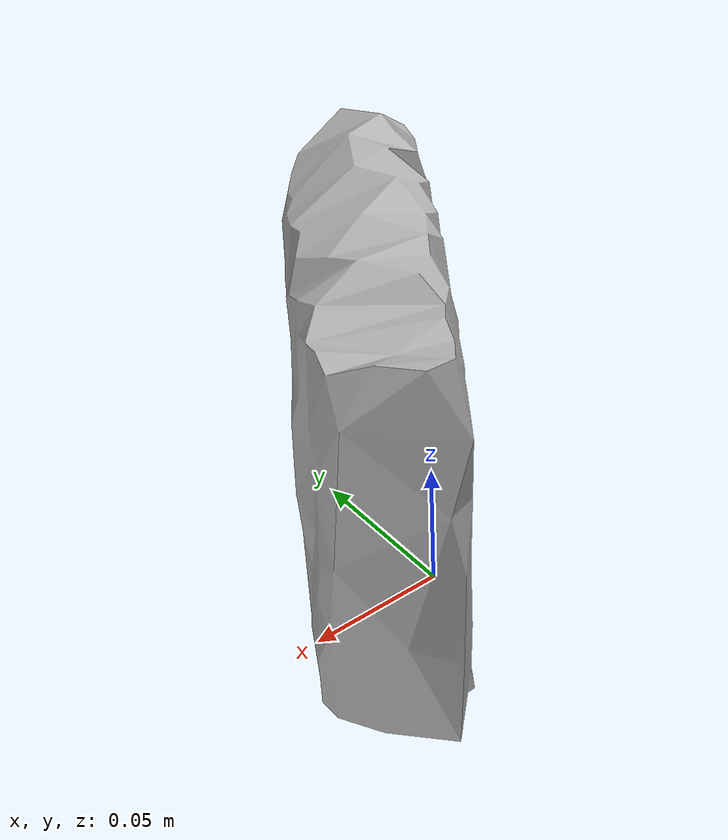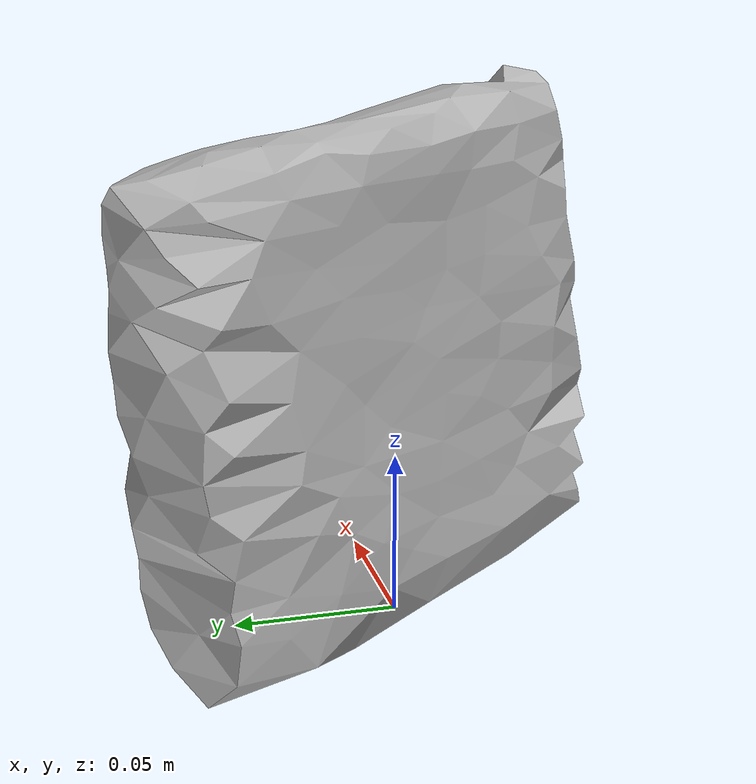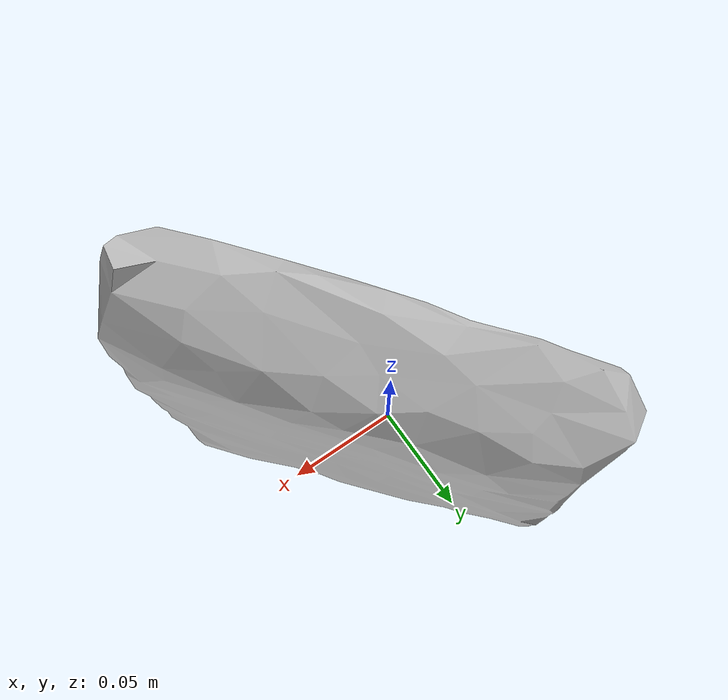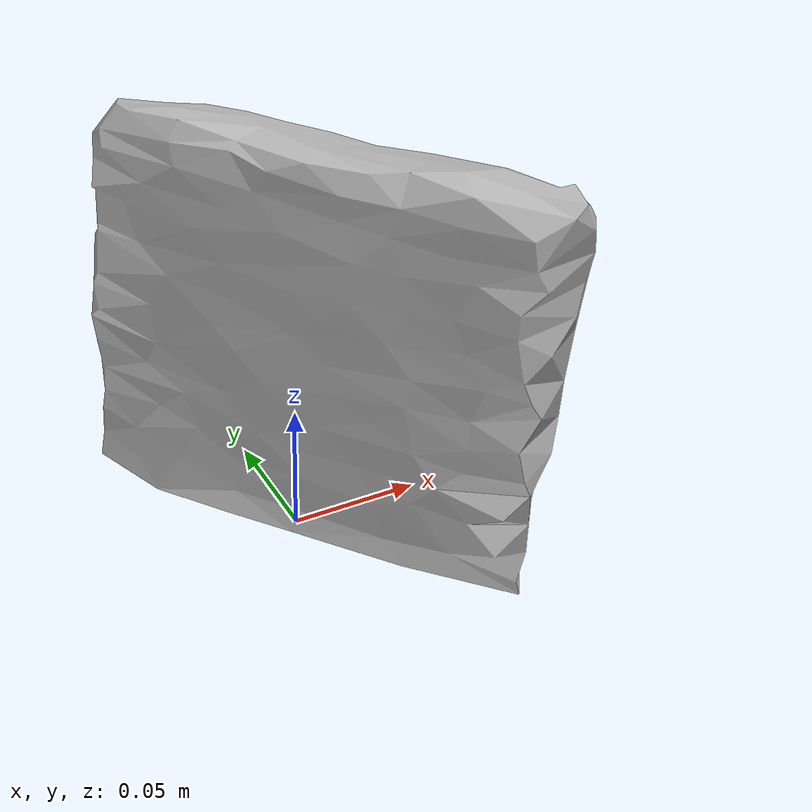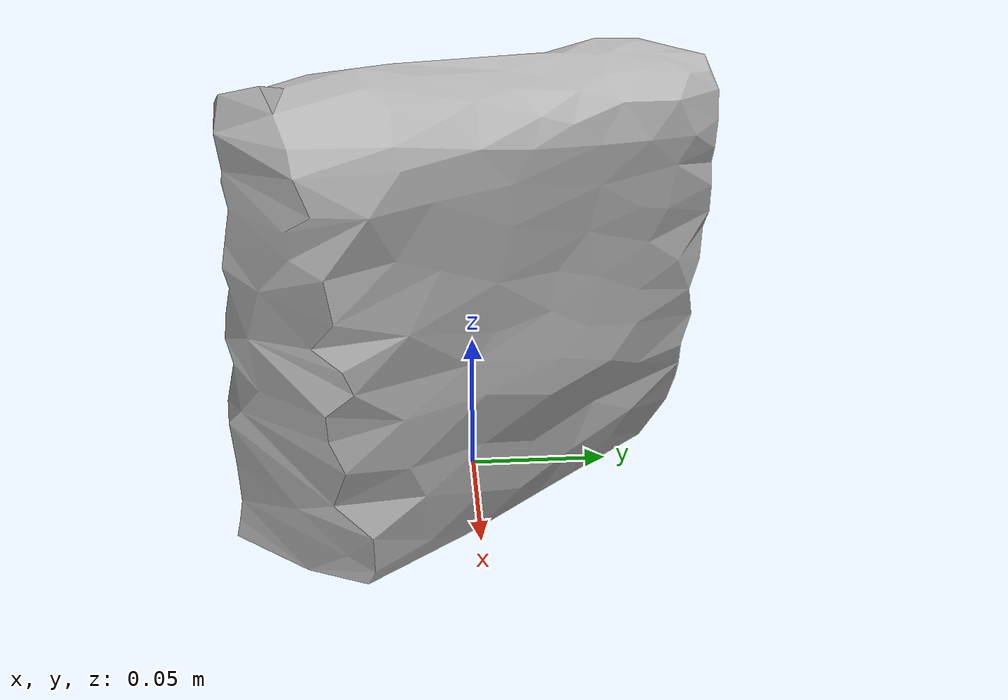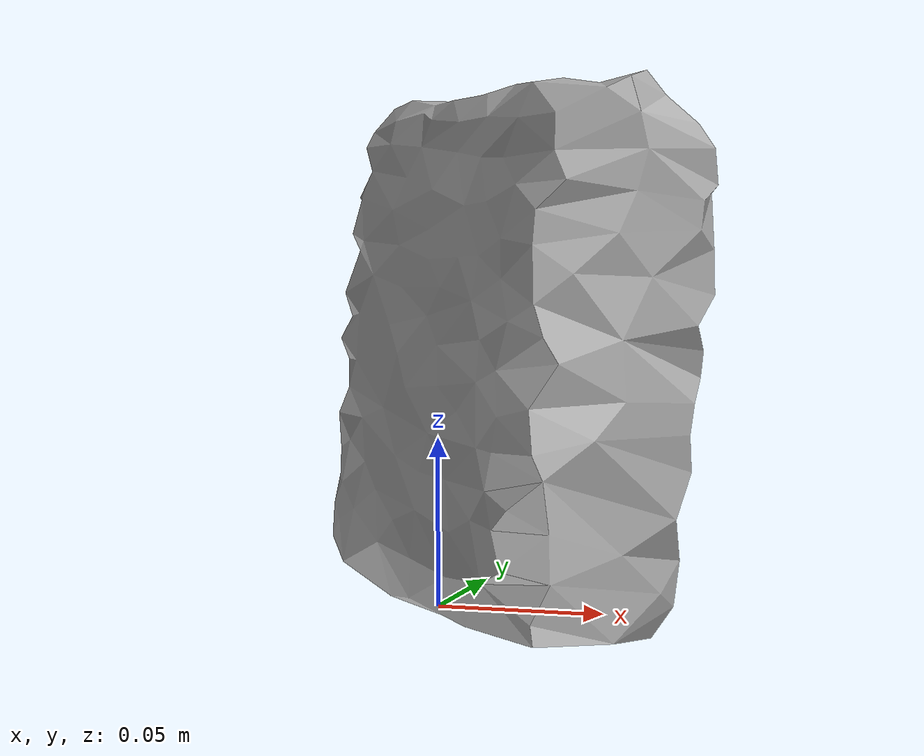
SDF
<?xml version="1.0" ?>
<sdf version="1.4">
  <model name="biscuits">
    <link name="biscuits_link">
      <inertial>
        <pose>0 0 0 0 0 0</pose>
        <mass>0.08</mass>
      </inertial>

      <visual name="biscuits_visual">
        <pose>0 0 0 0 0 0</pose>
        <material>
          <script>
            <uri>model://biscuits/materials/scripts</uri>
            <uri>model://biscuits/materials/textures</uri>
            <name>biscuits</name>
          </script>
        </material>
        <geometry>
          <mesh>
            <uri>model://biscuits/meshes/biscuits.dae</uri>
          </mesh>
        </geometry>
      </visual>

      <collision name="biscuits_collision">
        <pose>0 0 0 0 0 0</pose>
        <geometry>
          <mesh>
            <uri>model://biscuits/meshes/biscuits.dae</uri>
          </mesh>
        </geometry>
        <surface>
          <friction>
            <ode>
              <mu>0.8</mu>
              <mu2>0.8</mu2>
              <fdir1>0.0 0.0 0.0</fdir1>
              <slip1>0.01</slip1>
              <slip2>0.01</slip2>
            </ode>
          </friction>
        </surface>
      </collision>

    </link>
  </model>
</sdf>
